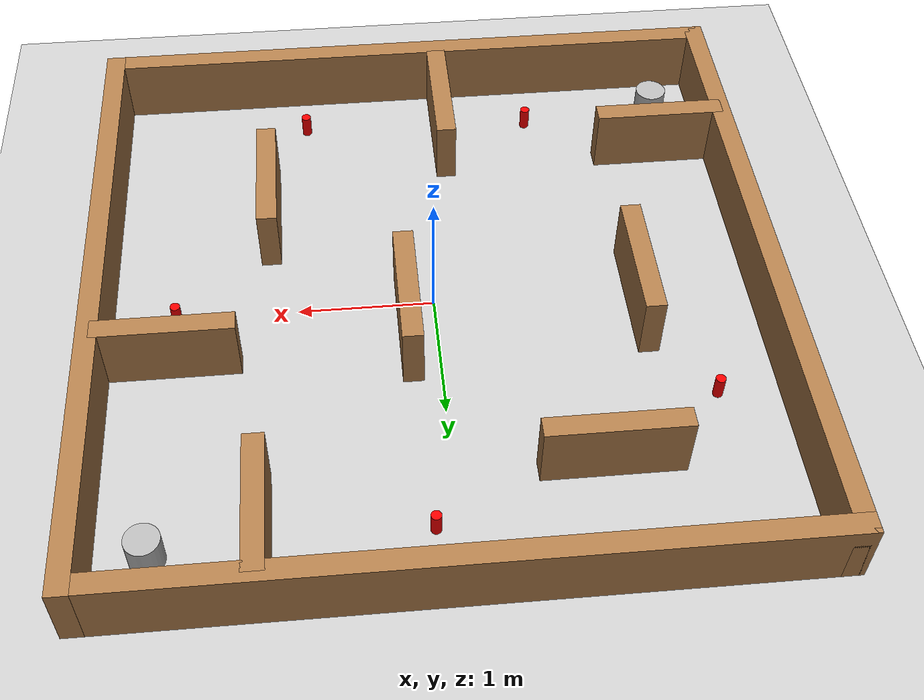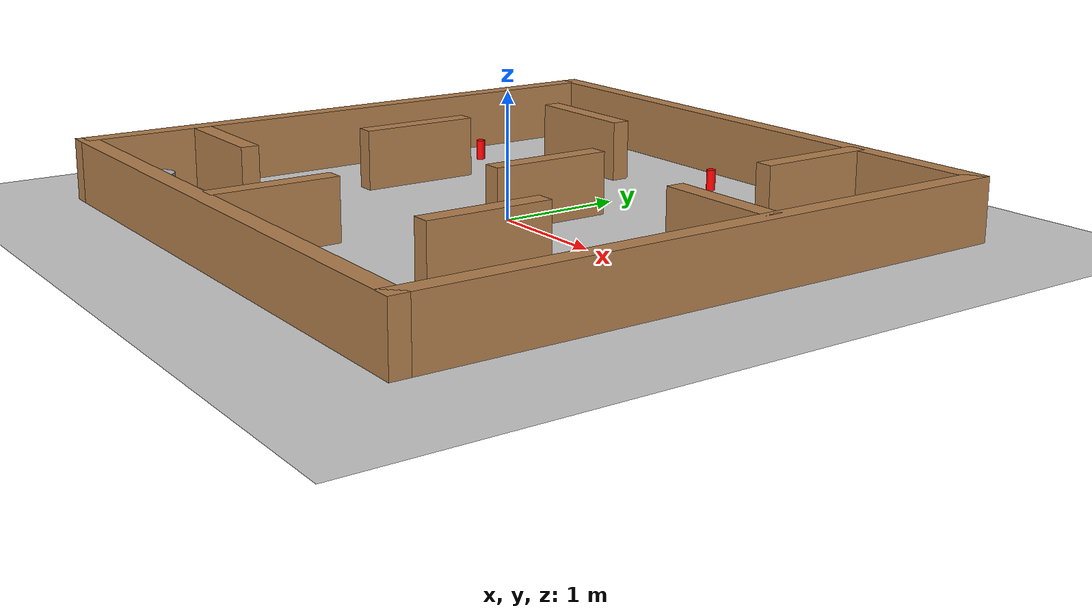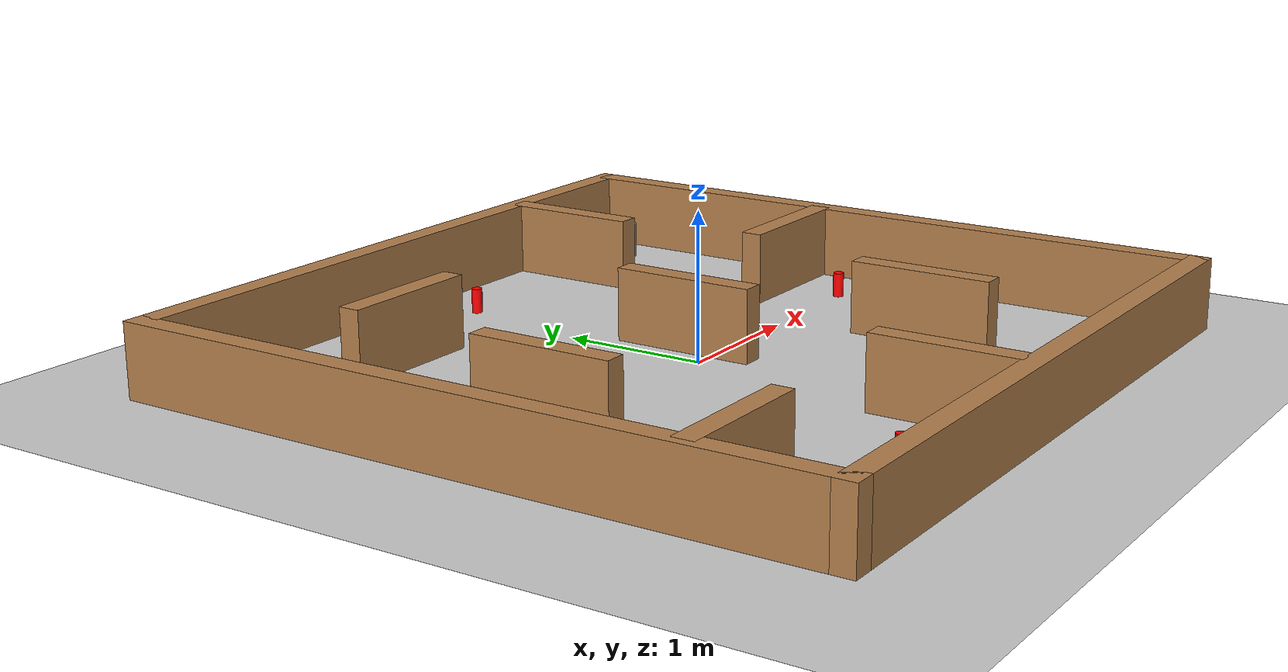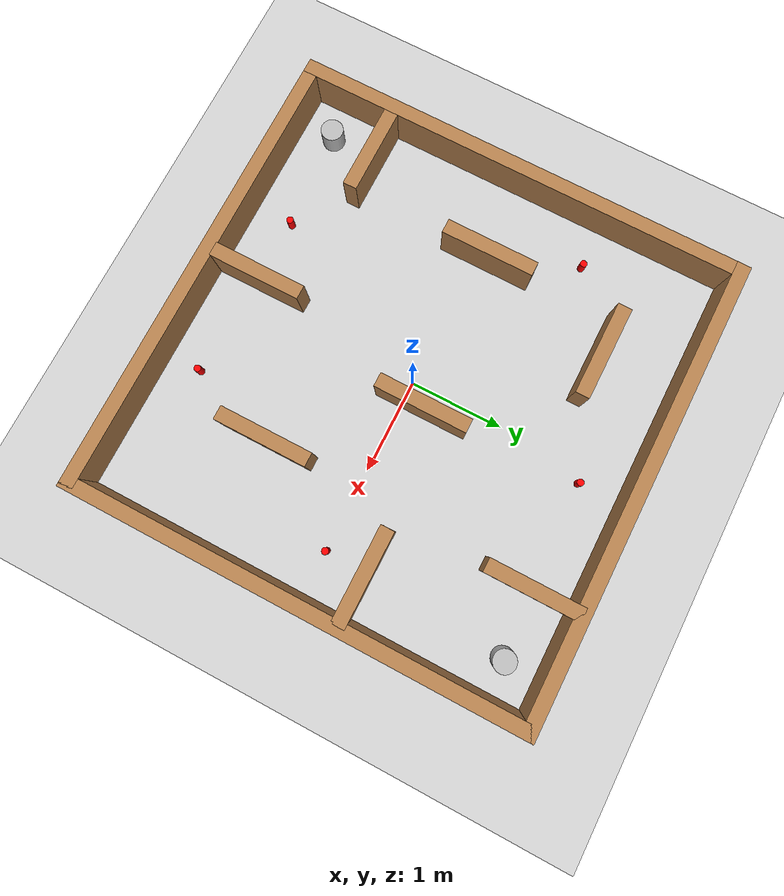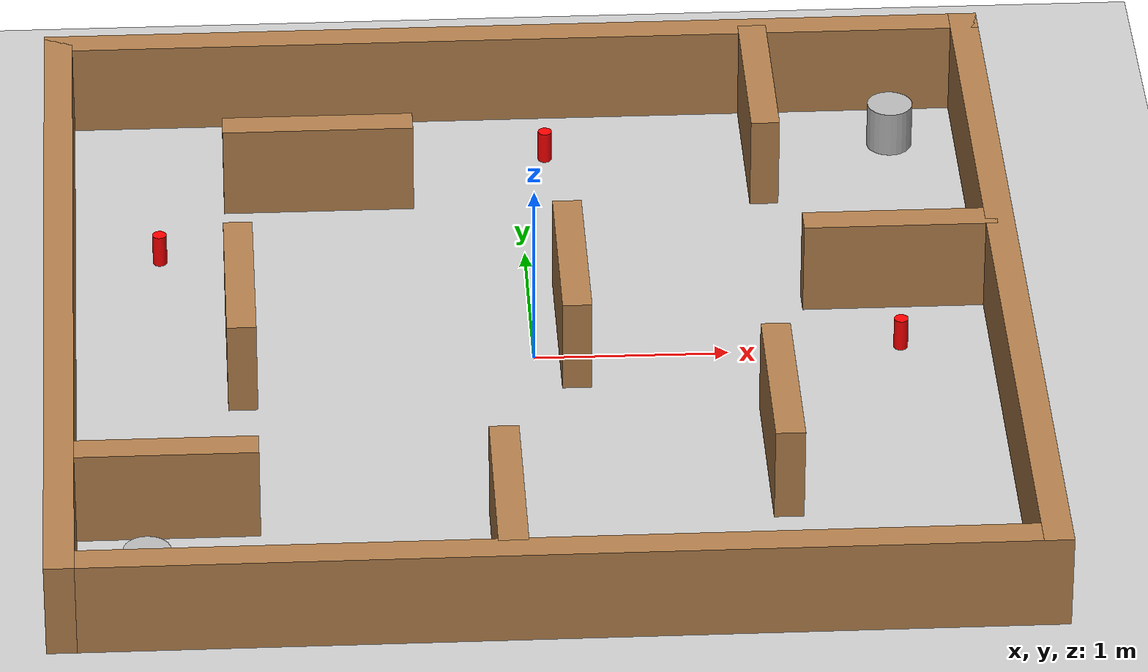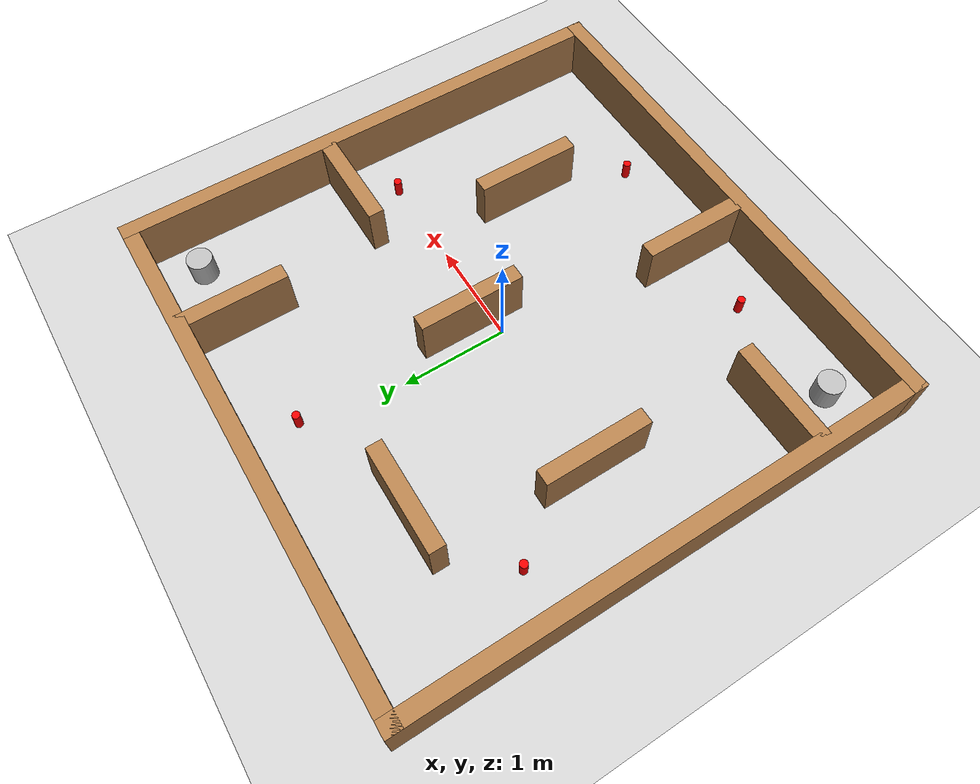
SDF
<sdf version="1.7">
 <world name="default">
  <light name="sun" type="directional">
   <pose>0 0 10 0 -0 0</pose>
   <diffuse>0.8 0.8 0.8 1</diffuse>
   <specular>0.2 0.2 0.2 1</specular>
   <attenuation>
    <range>1000</range>
    <constant>0.9</constant>
    <linear>0.01</linear>
    <quadratic>0.001</quadratic>
   </attenuation>
   <direction>-0.5 0.1 -0.9</direction>
   <spot><inner_angle>0</inner_angle><outer_angle>0</outer_angle><falloff>0</falloff></spot>
  </light>
  <model name="ground_plane">
   <static>1</static>
   <link name="link">
    <collision name="collision">
     <geometry><plane><normal>0 0 1</normal><size>100 100</size></plane></geometry>
     <surface>
      <contact><collide_bitmask>65535</collide_bitmask></contact>
      <friction><ode><mu>100</mu><mu2>50</mu2></ode></friction>
     </surface>
    </collision>
    <visual name="visual">
     <cast_shadows>0</cast_shadows>
     <geometry><plane><normal>0 0 1</normal><size>100 100</size></plane></geometry>
     <material>
      <script><uri>file://media/materials/scripts/gazebo.material</uri><name>Gazebo/Grey</name></script>
     </material>
    </visual>
   </link>
  </model>
  <physics type="ode">
   <real_time_update_rate>1000</real_time_update_rate>
   <max_step_size>0.001</max_step_size>
   <real_time_factor>1</real_time_factor>
   <ode>
    <solver>
     <type>quick</type>
     <iters>150</iters>
     <precon_iters>0</precon_iters>
     <sor>1.4</sor>
     <use_dynamic_moi_rescaling>1</use_dynamic_moi_rescaling>
    </solver>
    <constraints>
     <cfm>1e-05</cfm>
     <erp>0.2</erp>
     <contact_max_correcting_vel>2000</contact_max_correcting_vel>
     <contact_surface_layer>0.01</contact_surface_layer>
    </constraints>
   </ode>
  </physics>
  <model name="turtlebot3_plaza">
   <link name="Wall_0">
    <collision name="Wall_0_Collision">
     <geometry><box><size>5 0.15 0.5</size></box></geometry>
     <pose>0 0 0.25 0 -0 0</pose>
    </collision>
    <visual name="Wall_0_Visual">
     <pose>0 0 0.25 0 -0 0</pose>
     <geometry><box><size>5 0.15 0.5</size></box></geometry>
     <material>
      <script><uri>file://media/materials/scripts/gazebo.material</uri><name>Gazebo/Wood</name></script>
      <ambient>1 1 1 1</ambient>
     </material>
    </visual>
    <pose>-2.425 0 0 0 -0 1.5708</pose>
   </link>
   <link name="Wall_11">
    <collision name="Wall_11_Collision">
     <geometry><box><size>1 0.15 0.5</size></box></geometry>
     <pose>0 0 0.25 0 -0 0</pose>
    </collision>
    <visual name="Wall_11_Visual">
     <pose>0 0 0.25 0 -0 0</pose>
     <geometry><box><size>1 0.15 0.5</size></box></geometry>
     <material>
      <script><uri>file://media/materials/scripts/gazebo.material</uri><name>Gazebo/Wood</name></script>
      <ambient>1 1 1 1</ambient>
     </material>
    </visual>
    <pose>-1.937 -1.467 0 0 -0 0</pose>
   </link>
   <link name="Wall_13">
    <collision name="Wall_13_Collision">
     <geometry><box><size>1 0.15 0.5</size></box></geometry>
     <pose>0 0 0.25 0 -0 0</pose>
    </collision>
    <visual name="Wall_13_Visual">
     <pose>0 0 0.25 0 -0 0</pose>
     <geometry><box><size>1 0.15 0.5</size></box></geometry>
     <material>
      <script><uri>file://media/materials/scripts/gazebo.material</uri><name>Gazebo/Wood</name></script>
      <ambient>1 1 1 1</ambient>
     </material>
    </visual>
    <pose>-0.22 -1.866 0 0 0 -1.5708</pose>
   </link>
   <link name="Wall_15">
    <collision name="Wall_15_Collision">
     <geometry><box><size>1 0.15 0.5</size></box></geometry>
     <pose>0 0 0.25 0 -0 0</pose>
    </collision>
    <visual name="Wall_15_Visual">
     <pose>0 0 0.25 0 -0 0</pose>
     <geometry><box><size>1 0.15 0.5</size></box></geometry>
     <material>
      <script><uri>file://media/materials/scripts/gazebo.material</uri><name>Gazebo/Wood</name></script>
      <ambient>1 1 1 1</ambient>
     </material>
    </visual>
    <pose>1.195 -1.002 0 0 -0 1.5708</pose>
   </link>
   <link name="Wall_17">
    <collision name="Wall_17_Collision">
     <geometry><box><size>1 0.15 0.5</size></box></geometry>
     <pose>0 0 0.25 0 -0 0</pose>
    </collision>
    <visual name="Wall_17_Visual">
     <pose>0 0 0.25 0 -0 0</pose>
     <geometry><box><size>1 0.15 0.5</size></box></geometry>
     <material>
      <script><uri>file://media/materials/scripts/gazebo.material</uri><name>Gazebo/Wood</name></script>
      <ambient>1 1 1 1</ambient>
     </material>
    </visual>
    <pose>1.288 1.93 0 0 0 -1.5708</pose>
   </link>
   <link name="Wall_19">
    <collision name="Wall_19_Collision">
     <geometry><box><size>1 0.15 0.5</size></box></geometry>
     <pose>0 0 0.25 0 -0 0</pose>
    </collision>
    <visual name="Wall_19_Visual">
     <pose>0 0 0.25 0 -0 0</pose>
     <geometry><box><size>1 0.15 0.5</size></box></geometry>
     <material>
      <script><uri>file://media/materials/scripts/gazebo.material</uri><name>Gazebo/Wood</name></script>
      <ambient>1 1 1 1</ambient>
     </material>
    </visual>
    <pose>1.91128 0.4632 0 0 -0 0</pose>
   </link>
   <link name="Wall_2">
    <collision name="Wall_2_Collision">
     <geometry><box><size>5 0.15 0.5</size></box></geometry>
     <pose>0 0 0.25 0 -0 0</pose>
    </collision>
    <visual name="Wall_2_Visual">
     <pose>0 0 0.25 0 -0 0</pose>
     <geometry><box><size>5 0.15 0.5</size></box></geometry>
     <material>
      <script><uri>file://media/materials/scripts/gazebo.material</uri><name>Gazebo/Wood</name></script>
      <ambient>1 1 1 1</ambient>
     </material>
    </visual>
    <pose>0 2.425 0 0 -0 0</pose>
   </link>
   <link name="Wall_21">
    <collision name="Wall_21_Collision">
     <geometry><box><size>1 0.15 0.5</size></box></geometry>
     <pose>0 0 0.25 0 -0 0</pose>
    </collision>
    <visual name="Wall_21_Visual">
     <pose>0 0 0.25 0 -0 0</pose>
     <geometry><box><size>1 0.15 0.5</size></box></geometry>
     <material>
      <script><uri>file://media/materials/scripts/gazebo.material</uri><name>Gazebo/Wood</name></script>
      <ambient>1 1 1 1</ambient>
     </material>
    </visual>
    <pose>0.204 0.215 0 0 0 -1.5708</pose>
   </link>
   <link name="Wall_3">
    <collision name="Wall_3_Collision">
     <geometry><box><size>5 0.15 0.5</size></box></geometry>
     <pose>0 0 0.25 0 -0 0</pose>
    </collision>
    <visual name="Wall_3_Visual">
     <pose>0 0 0.25 0 -0 0</pose>
     <geometry><box><size>5 0.15 0.5</size></box></geometry>
     <material>
      <script><uri>file://media/materials/scripts/gazebo.material</uri><name>Gazebo/Wood</name></script>
      <ambient>1 1 1 1</ambient>
     </material>
    </visual>
    <pose>2.425 0 0 0 0 -1.5708</pose>
   </link>
   <link name="Wall_4">
    <collision name="Wall_4_Collision">
     <geometry><box><size>5 0.15 0.5</size></box></geometry>
     <pose>0 0 0.25 0 -0 0</pose>
    </collision>
    <visual name="Wall_4_Visual">
     <pose>0 0 0.25 0 -0 0</pose>
     <geometry><box><size>5 0.15 0.5</size></box></geometry>
     <material>
      <script><uri>file://media/materials/scripts/gazebo.material</uri><name>Gazebo/Wood</name></script>
      <ambient>1 1 1 1</ambient>
     </material>
    </visual>
    <pose>0 -2.425 0 0 -0 3.14159</pose>
   </link>
   <link name="Wall_7">
    <collision name="Wall_7_Collision">
     <geometry><box><size>1 0.15 0.5</size></box></geometry>
     <pose>0 0 0.25 0 -0 0</pose>
    </collision>
    <visual name="Wall_7_Visual">
     <pose>0 0 0.25 0 -0 0</pose>
     <geometry><box><size>1 0.15 0.5</size></box></geometry>
     <material>
      <script><uri>file://media/materials/scripts/gazebo.material</uri><name>Gazebo/Wood</name></script>
      <ambient>1 1 1 1</ambient>
     </material>
    </visual>
    <pose>-1.064 1.548 0 0 -0 0</pose>
   </link>
   <link name="Wall_9">
    <collision name="Wall_9_Collision">
     <geometry><box><size>1 0.15 0.5</size></box></geometry>
     <pose>0 0 0.25 0 -0 0</pose>
    </collision>
    <visual name="Wall_9_Visual">
     <pose>0 0 0.25 0 -0 0</pose>
     <geometry><box><size>1 0.15 0.5</size></box></geometry>
     <material>
      <script><uri>file://media/materials/scripts/gazebo.material</uri><name>Gazebo/Wood</name></script>
      <ambient>1 1 1 1</ambient>
     </material>
    </visual>
    <pose>-1.502 0.092 0 0 0 -1.5708</pose>
   </link>
   <static>1</static>
  </model>
  <model name="obstacle_1">
   <pose>2 2 0.124991 0 -0 0</pose>
   <link name="link">
    <collision name="collision">
     <geometry><cylinder><radius>0.12</radius><length>0.25</length></cylinder></geometry>
    </collision>
    <visual name="visual">
     <geometry><cylinder><radius>0.12</radius><length>0.25</length></cylinder></geometry>
    </visual>
    <inertial>
     <inertia><ixx>1</ixx><ixy>0</ixy><ixz>0</ixz><iyy>1</iyy><iyz>0</iyz><izz>1</izz></inertia>
     <mass>1</mass>
    </inertial>
   </link>
  </model>
  <model name="obstacle_2">
   <pose>-2 -2 0.124991 0 -0 0</pose>
   <link name="link">
    <collision name="collision">
     <geometry><cylinder><radius>0.12</radius><length>0.25</length></cylinder></geometry>
    </collision>
    <visual name="visual">
     <geometry><cylinder><radius>0.12</radius><length>0.25</length></cylinder></geometry>
    </visual>
    <inertial>
     <inertia><ixx>1</ixx><ixy>0</ixy><ixz>0</ixz><iyy>1</iyy><iyz>0</iyz><izz>1</izz></inertia>
     <mass>1</mass>
    </inertial>
   </link>
   <plugin name="obstacle_2" filename="libobstacle_2.so"/>
  </model>
  <scene><ambient>0.4 0.4 0.4 1</ambient><background>0.7 0.7 0.7 1</background><shadows>1</shadows></scene>
  <gravity>0 0 -9.8</gravity>
  <magnetic_field>6e-06 2.3e-05 -4.2e-05</magnetic_field>
  <atmosphere type="adiabatic"/>
  <spherical_coordinates>
   <surface_model>EARTH_WGS84</surface_model>
   <latitude_deg>0</latitude_deg>
   <longitude_deg>0</longitude_deg>
   <elevation>0</elevation>
   <heading_deg>0</heading_deg>
  </spherical_coordinates>
  <model name="unit_cylinder">
   <link name="link">
    <inertial>
     <mass>0.00091752</mass>
     <inertia>
      <ixx>2.57e-06</ixx>
      <ixy>0</ixy>
      <ixz>0</ixz>
      <iyy>2.57e-06</iyy>
      <iyz>0</iyz>
      <izz>6.1e-07</izz>
     </inertia>
    </inertial>
    <pose>-0.690416 0.990863 -0.415339 0 -0 0</pose>
    <visual name="visual">
     <geometry><cylinder><radius>0.0365009</radius><length>0.172087</length></cylinder></geometry>
     <material>
      <script><name>Gazebo/Grey</name><uri>file://media/materials/scripts/gazebo.material</uri></script>
      <shader type="pixel"><normal_map>__default__</normal_map></shader>
      <ambient>1 0 0 0</ambient>
      <diffuse>0.7 0.7 0.7 1</diffuse>
      <specular>0.01 0.01 0.01 1</specular>
      <emissive>0 0 0 1</emissive>
     </material>
    </visual>
    <collision name="collision">
     <geometry><cylinder><radius>0.036501</radius><length>0.172087</length></cylinder></geometry>
     <surface>
      <friction>
       <ode><mu>1</mu><mu2>1</mu2><fdir1>0 0 0</fdir1><slip1>0</slip1><slip2>0</slip2></ode>
       <torsional>
        <coefficient>1</coefficient>
        <patch_radius>0</patch_radius>
        <surface_radius>0</surface_radius>
        <use_patch_radius>1</use_patch_radius>
        <ode><slip>0</slip></ode>
       </torsional>
      </friction>
      <bounce><restitution_coefficient>0</restitution_coefficient><threshold>1e+06</threshold></bounce>
      <contact>
       <collide_without_contact>0</collide_without_contact>
       <collide_without_contact_bitmask>1</collide_without_contact_bitmask>
       <collide_bitmask>1</collide_bitmask>
       <ode>
        <soft_cfm>0</soft_cfm>
        <soft_erp>0.2</soft_erp>
        <kp>1e+13</kp>
        <kd>1</kd>
        <max_vel>0.01</max_vel>
        <min_depth>0</min_depth>
       </ode>
       <bullet>
        <split_impulse>1</split_impulse>
        <split_impulse_penetration_threshold>-0.01</split_impulse_penetration_threshold>
        <soft_cfm>0</soft_cfm>
        <soft_erp>0.2</soft_erp>
        <kp>1e+13</kp>
        <kd>1</kd>
       </bullet>
      </contact>
     </surface>
    </collision>
   </link>
   <static>0</static>
   <pose>0.843788 0.944991 0.501395 -8e-06 -8e-06 0</pose>
  </model>
  <model name="unit_cylinder_clone">
   <link name="link">
    <inertial>
     <mass>0.00091752</mass>
     <inertia>
      <ixx>2.57e-06</ixx>
      <ixy>0</ixy>
      <ixz>0</ixz>
      <iyy>2.57e-06</iyy>
      <iyz>0</iyz>
      <izz>6.1e-07</izz>
     </inertia>
    </inertial>
    <pose>-0.690416 0.990863 -0.415339 0 -0 0</pose>
    <visual name="visual">
     <geometry><cylinder><radius>0.0365009</radius><length>0.172087</length></cylinder></geometry>
     <material>
      <script><name>Gazebo/Grey</name><uri>file://media/materials/scripts/gazebo.material</uri></script>
      <shader type="pixel"><normal_map>__default__</normal_map></shader>
      <ambient>1 0 0 0</ambient>
      <diffuse>0.7 0.7 0.7 1</diffuse>
      <specular>0.01 0.01 0.01 1</specular>
      <emissive>0 0 0 1</emissive>
     </material>
    </visual>
    <collision name="collision">
     <geometry><cylinder><radius>0.036501</radius><length>0.172087</length></cylinder></geometry>
     <surface>
      <friction>
       <ode><mu>1</mu><mu2>1</mu2><fdir1>0 0 0</fdir1><slip1>0</slip1><slip2>0</slip2></ode>
       <torsional>
        <coefficient>1</coefficient>
        <patch_radius>0</patch_radius>
        <surface_radius>0</surface_radius>
        <use_patch_radius>1</use_patch_radius>
        <ode><slip>0</slip></ode>
       </torsional>
      </friction>
      <bounce><restitution_coefficient>0</restitution_coefficient><threshold>1e+06</threshold></bounce>
      <contact>
       <collide_without_contact>0</collide_without_contact>
       <collide_without_contact_bitmask>1</collide_without_contact_bitmask>
       <collide_bitmask>1</collide_bitmask>
       <ode>
        <soft_cfm>0</soft_cfm>
        <soft_erp>0.2</soft_erp>
        <kp>1e+13</kp>
        <kd>1</kd>
        <max_vel>0.01</max_vel>
        <min_depth>0</min_depth>
       </ode>
       <bullet>
        <split_impulse>1</split_impulse>
        <split_impulse_penetration_threshold>-0.01</split_impulse_penetration_threshold>
        <soft_cfm>0</soft_cfm>
        <soft_erp>0.2</soft_erp>
        <kp>1e+13</kp>
        <kd>1</kd>
       </bullet>
      </contact>
     </surface>
    </collision>
   </link>
   <static>0</static>
   <pose>2.57756 -0.975519 0.501395 -8e-06 -8e-06 0</pose>
  </model>
  <model name="unit_cylinder_clone_0">
   <link name="link">
    <inertial>
     <mass>0.00091752</mass>
     <inertia>
      <ixx>2.57e-06</ixx>
      <ixy>0</ixy>
      <ixz>0</ixz>
      <iyy>2.57e-06</iyy>
      <iyz>0</iyz>
      <izz>6.1e-07</izz>
     </inertia>
    </inertial>
    <pose>-0.690416 0.990863 -0.415339 0 -0 0</pose>
    <visual name="visual">
     <geometry><cylinder><radius>0.0365009</radius><length>0.172087</length></cylinder></geometry>
     <material>
      <script><name>Gazebo/Grey</name><uri>file://media/materials/scripts/gazebo.material</uri></script>
      <shader type="pixel"><normal_map>__default__</normal_map></shader>
      <ambient>1 0 0 0</ambient>
      <diffuse>0.7 0.7 0.7 1</diffuse>
      <specular>0.01 0.01 0.01 1</specular>
      <emissive>0 0 0 1</emissive>
     </material>
    </visual>
    <collision name="collision">
     <geometry><cylinder><radius>0.036501</radius><length>0.172087</length></cylinder></geometry>
     <surface>
      <friction>
       <ode><mu>1</mu><mu2>1</mu2><fdir1>0 0 0</fdir1><slip1>0</slip1><slip2>0</slip2></ode>
       <torsional>
        <coefficient>1</coefficient>
        <patch_radius>0</patch_radius>
        <surface_radius>0</surface_radius>
        <use_patch_radius>1</use_patch_radius>
        <ode><slip>0</slip></ode>
       </torsional>
      </friction>
      <bounce><restitution_coefficient>0</restitution_coefficient><threshold>1e+06</threshold></bounce>
      <contact>
       <collide_without_contact>0</collide_without_contact>
       <collide_without_contact_bitmask>1</collide_without_contact_bitmask>
       <collide_bitmask>1</collide_bitmask>
       <ode>
        <soft_cfm>0</soft_cfm>
        <soft_erp>0.2</soft_erp>
        <kp>1e+13</kp>
        <kd>1</kd>
        <max_vel>0.01</max_vel>
        <min_depth>0</min_depth>
       </ode>
       <bullet>
        <split_impulse>1</split_impulse>
        <split_impulse_penetration_threshold>-0.01</split_impulse_penetration_threshold>
        <soft_cfm>0</soft_cfm>
        <soft_erp>0.2</soft_erp>
        <kp>1e+13</kp>
        <kd>1</kd>
       </bullet>
      </contact>
     </surface>
    </collision>
   </link>
   <static>0</static>
   <pose>-1.21784 0.017931 0.501395 -8e-06 -8e-06 0</pose>
  </model>
  <model name="unit_cylinder_clone_1">
   <link name="link">
    <inertial>
     <mass>0.00091752</mass>
     <inertia>
      <ixx>2.57e-06</ixx>
      <ixy>0</ixy>
      <ixz>0</ixz>
      <iyy>2.57e-06</iyy>
      <iyz>0</iyz>
      <izz>6.1e-07</izz>
     </inertia>
    </inertial>
    <pose>-0.690416 0.990863 -0.415339 0 -0 0</pose>
    <visual name="visual">
     <geometry><cylinder><radius>0.0365009</radius><length>0.172087</length></cylinder></geometry>
     <material>
      <script><name>Gazebo/Grey</name><uri>file://media/materials/scripts/gazebo.material</uri></script>
      <shader type="pixel"><normal_map>__default__</normal_map></shader>
      <ambient>1 0 0 0</ambient>
      <diffuse>0.7 0.7 0.7 1</diffuse>
      <specular>0.01 0.01 0.01 1</specular>
      <emissive>0 0 0 1</emissive>
     </material>
    </visual>
    <collision name="collision">
     <geometry><cylinder><radius>0.036501</radius><length>0.172087</length></cylinder></geometry>
     <surface>
      <friction>
       <ode><mu>1</mu><mu2>1</mu2><fdir1>0 0 0</fdir1><slip1>0</slip1><slip2>0</slip2></ode>
       <torsional>
        <coefficient>1</coefficient>
        <patch_radius>0</patch_radius>
        <surface_radius>0</surface_radius>
        <use_patch_radius>1</use_patch_radius>
        <ode><slip>0</slip></ode>
       </torsional>
      </friction>
      <bounce><restitution_coefficient>0</restitution_coefficient><threshold>1e+06</threshold></bounce>
      <contact>
       <collide_without_contact>0</collide_without_contact>
       <collide_without_contact_bitmask>1</collide_without_contact_bitmask>
       <collide_bitmask>1</collide_bitmask>
       <ode>
        <soft_cfm>0</soft_cfm>
        <soft_erp>0.2</soft_erp>
        <kp>1e+13</kp>
        <kd>1</kd>
        <max_vel>0.01</max_vel>
        <min_depth>0</min_depth>
       </ode>
       <bullet>
        <split_impulse>1</split_impulse>
        <split_impulse_penetration_threshold>-0.01</split_impulse_penetration_threshold>
        <soft_cfm>0</soft_cfm>
        <soft_erp>0.2</soft_erp>
        <kp>1e+13</kp>
        <kd>1</kd>
       </bullet>
      </contact>
     </surface>
    </collision>
   </link>
   <static>0</static>
   <pose>1.57917 -2.98602 0.501395 -8e-06 -8e-06 0</pose>
  </model>
  <model name="unit_cylinder_clone_2">
   <link name="link">
    <inertial>
     <mass>0.00091752</mass>
     <inertia>
      <ixx>2.57e-06</ixx>
      <ixy>0</ixy>
      <ixz>0</ixz>
      <iyy>2.57e-06</iyy>
      <iyz>0</iyz>
      <izz>6.1e-07</izz>
     </inertia>
    </inertial>
    <pose>-0.690416 0.990863 -0.415339 0 -0 0</pose>
    <visual name="visual">
     <geometry><cylinder><radius>0.0365009</radius><length>0.172087</length></cylinder></geometry>
     <material>
      <script><name>Gazebo/Grey</name><uri>file://media/materials/scripts/gazebo.material</uri></script>
      <shader type="pixel"><normal_map>__default__</normal_map></shader>
      <ambient>1 0 0 0</ambient>
      <diffuse>0.7 0.7 0.7 1</diffuse>
      <specular>0.01 0.01 0.01 1</specular>
      <emissive>0 0 0 1</emissive>
     </material>
    </visual>
    <collision name="collision">
     <geometry><cylinder><radius>0.036501</radius><length>0.172087</length></cylinder></geometry>
     <surface>
      <friction>
       <ode><mu>1</mu><mu2>1</mu2><fdir1>0 0 0</fdir1><slip1>0</slip1><slip2>0</slip2></ode>
       <torsional>
        <coefficient>1</coefficient>
        <patch_radius>0</patch_radius>
        <surface_radius>0</surface_radius>
        <use_patch_radius>1</use_patch_radius>
        <ode><slip>0</slip></ode>
       </torsional>
      </friction>
      <bounce><restitution_coefficient>0</restitution_coefficient><threshold>1e+06</threshold></bounce>
      <contact>
       <collide_without_contact>0</collide_without_contact>
       <collide_without_contact_bitmask>1</collide_without_contact_bitmask>
       <collide_bitmask>1</collide_bitmask>
       <ode>
        <soft_cfm>0</soft_cfm>
        <soft_erp>0.2</soft_erp>
        <kp>1e+13</kp>
        <kd>1</kd>
        <max_vel>0.01</max_vel>
        <min_depth>0</min_depth>
       </ode>
       <bullet>
        <split_impulse>1</split_impulse>
        <split_impulse_penetration_threshold>-0.01</split_impulse_penetration_threshold>
        <soft_cfm>0</soft_cfm>
        <soft_erp>0.2</soft_erp>
        <kp>1e+13</kp>
        <kd>1</kd>
       </bullet>
      </contact>
     </surface>
    </collision>
   </link>
   <static>0</static>
   <pose>-0.241294 -2.92406 0.501395 -8e-06 -8e-06 0</pose>
  </model>
 </world>
</sdf>
